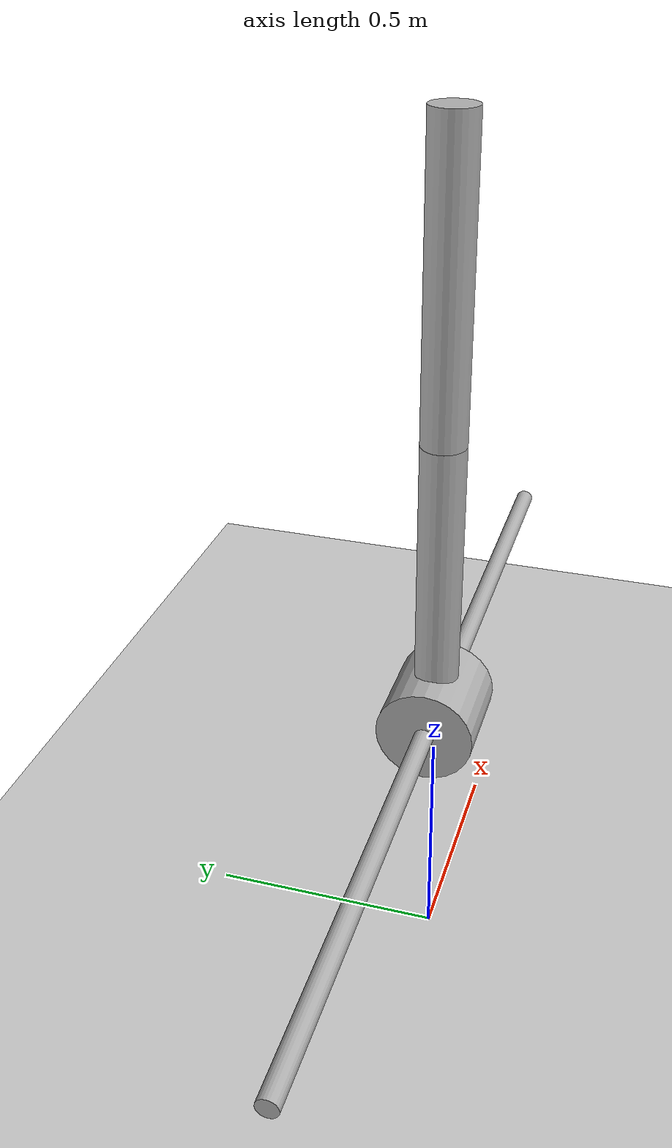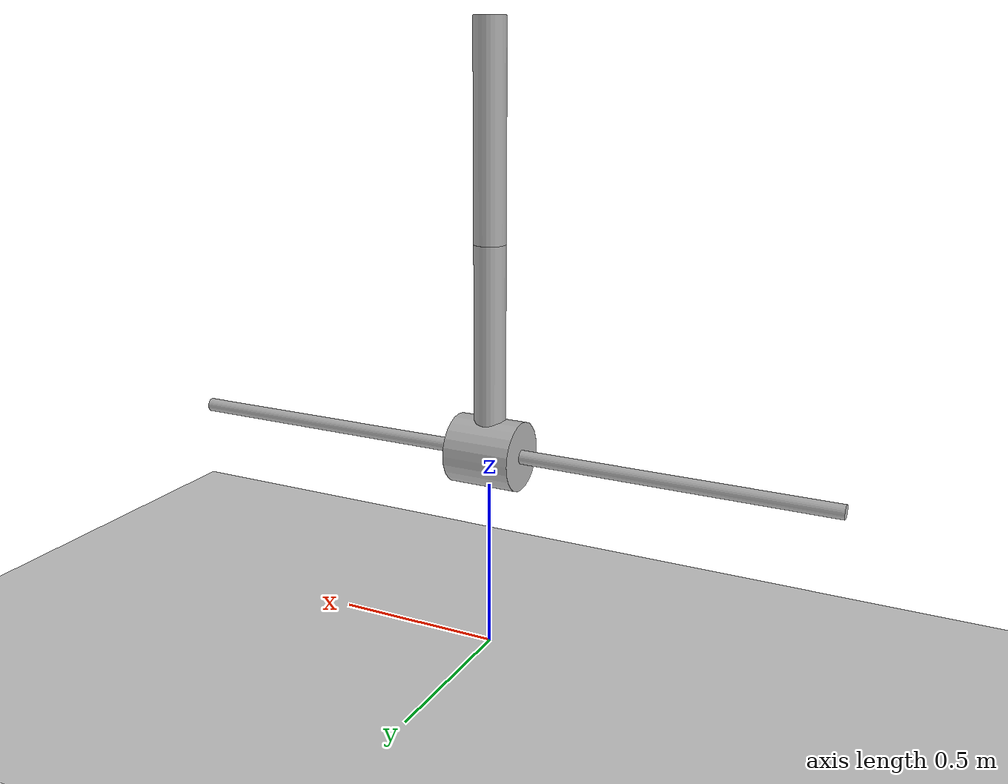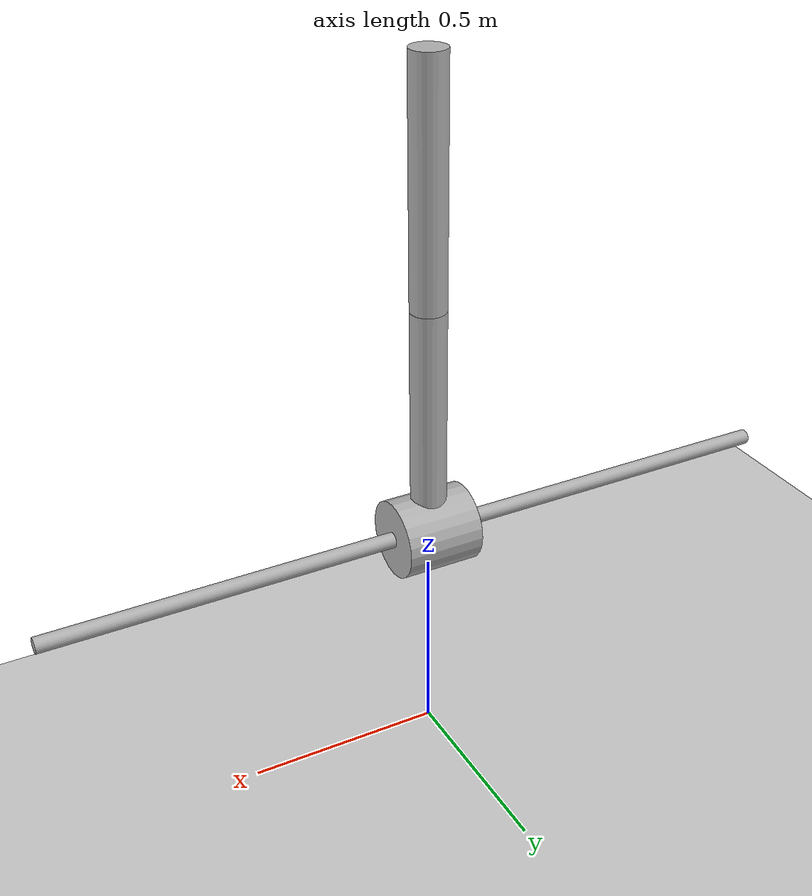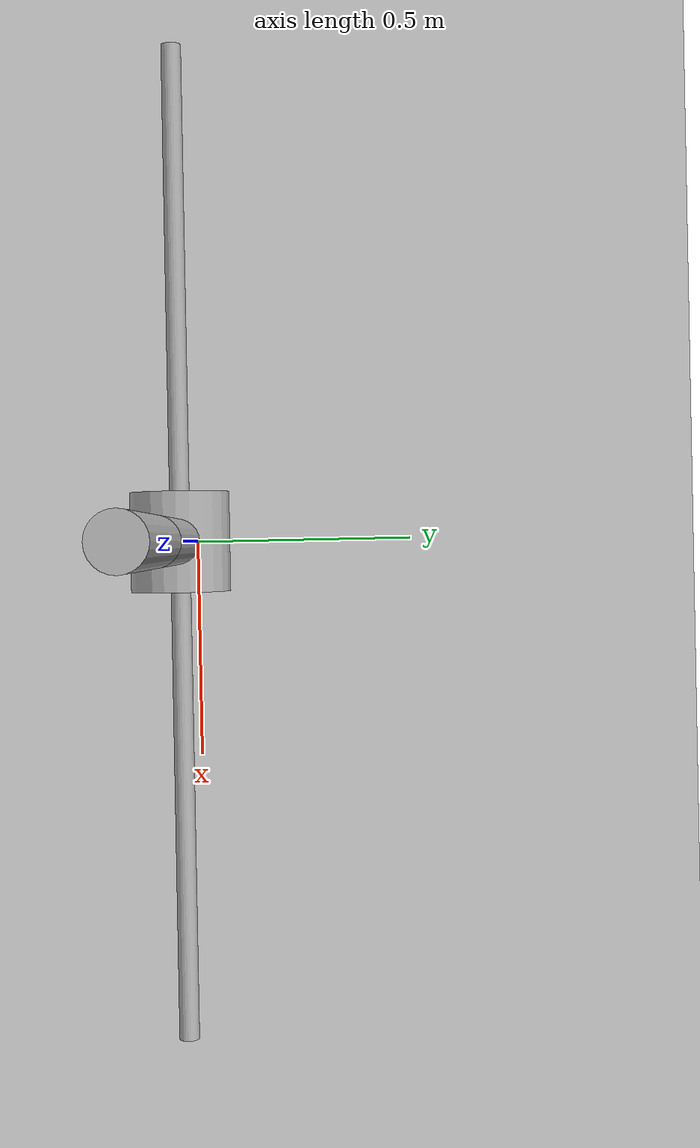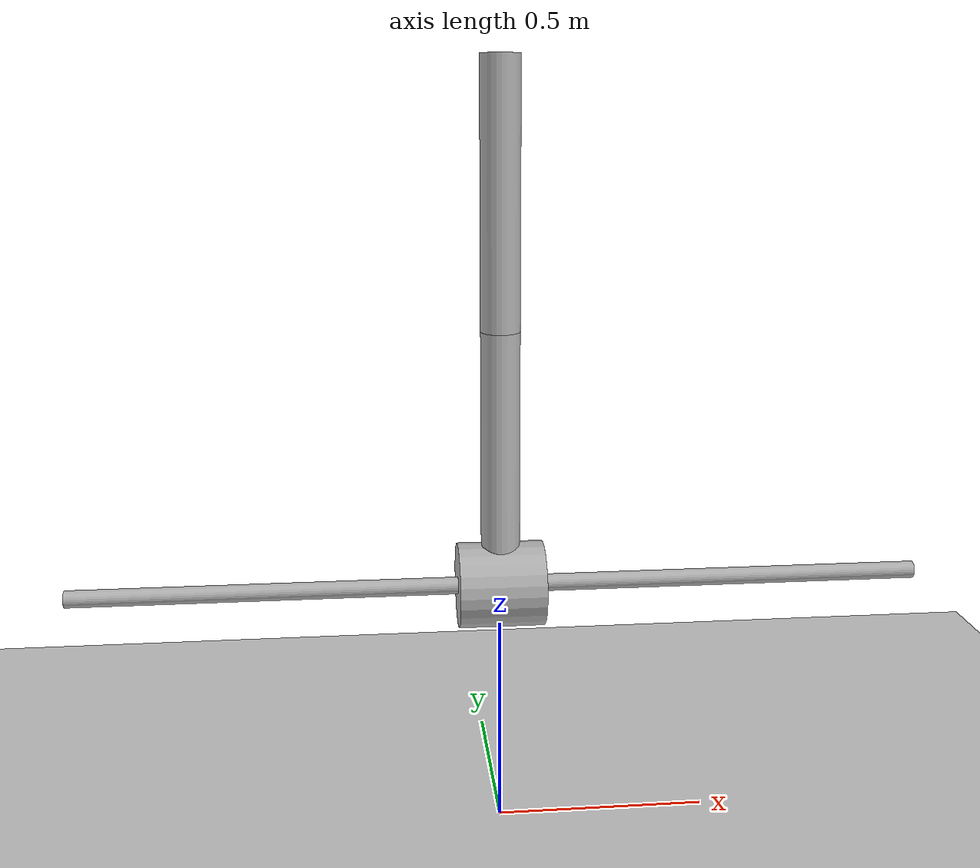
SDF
<?xml version="1.0" ?>
<sdf version="1.8">
  <world name="inverted_double_pendulum">
    <physics name="10ms" type="ignored">
      <max_step_size>0.01</max_step_size>
      <real_time_update_rate>0</real_time_update_rate>
    </physics>
    <plugin filename="gz-sim-physics-system"           name="gz::sim::systems::Physics"/>
    <plugin filename="gz-sim-contact-system"           name="gz::sim::systems::Contact"/>
    <plugin filename="gz-sim-sensors-system"           name="gz::sim::systems::Sensors">
      <render_engine>ogre2</render_engine>
    </plugin>
    <plugin filename="gz-sim-scene-broadcaster-system" name="gz::sim::systems::SceneBroadcaster"/>
    <plugin filename="gz-sim-user-commands-system"     name="gz::sim::systems::UserCommands"/>

    <plugin
      filename="gz-sim-python-system-loader-system"
      name="gz::sim::systems::PythonSystemLoader">
      <module_name>inverted_double_pendulum_learner</module_name>
      <agent_name>inverted_double_pendulum</agent_name>
      <frame_skip>5</frame_skip>
    </plugin>

    <light name="sun" type="directional">
      <cast_shadows>true</cast_shadows>
      <pose>0 0 10 0 0 0</pose>
      <diffuse>0.8 0.8 0.8 1</diffuse>
      <specular>0.2 0.2 0.2 1</specular>
      <direction>-0.5 0.1 -0.9</direction>
    </light>

    <model name="ground_plane">
      <static>true</static>
      <link name="link">
        <collision name="collision">
          <geometry><plane><normal>0 0 1</normal><size>100 100</size></plane></geometry>
        </collision>
        <visual name="visual">
          <geometry><plane><normal>0 0 1</normal><size>100 100</size></plane></geometry>
          <material>
            <ambient>0.8 0.8 0.8 1</ambient>
            <diffuse>0.8 0.8 0.8 1</diffuse>
            <specular>0.8 0.8 0.8 1</specular>
          </material>
        </visual>
      </link>
    </model>

    <model name="inverted_double_pendulum">
      <pose>0 0 0.6 0 0 0</pose>
      <include merge="true">
        <uri>package://gazebo_gymnasium_resources/models/inverted_double_pendulum</uri>
      </include>
    </model>
  </world>
</sdf>

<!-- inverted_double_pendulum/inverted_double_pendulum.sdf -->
<sdf version='1.11'>
  <model name='inverted_double_pendulum'>
    <link name='rail'>
      <inertial>
        <pose>0 0 0 0 0 0</pose>
        <mass>3.0000000000000001e-06</mass>
        <inertia>
          <ixx>3e-09</ixx>
          <ixy>0</ixy>
          <ixz>0</ixz>
          <iyy>3e-09</iyy>
          <iyz>0</iyz>
          <izz>3e-09</izz>
        </inertia>
      </inertial>
      <collision name='rail_fixed_joint_lump__rail_collision'>
        <pose>0 0 0 0 1.5707963267948966 0</pose>
        <geometry>
          <cylinder>
            <length>2</length>
            <radius>0.02</radius>
          </cylinder>
        </geometry>
      </collision>
      <visual name='rail_fixed_joint_lump__rail_visual'>
        <pose>0 0 0 0 1.5707963267948966 0</pose>
        <geometry>
          <cylinder>
            <length>2</length>
            <radius>0.02</radius>
          </cylinder>
        </geometry>
              <material>
          <ambient>0.5 0.5 0.5 1</ambient>
          <diffuse>0.7 0.7 0.7 1</diffuse>
          <specular>0.1 0.1 0.1 1</specular>
        </material>
      </visual>
    </link>
    <joint name='slider' type='prismatic'>
      <pose relative_to='rail'>0 0 0 0 0 0</pose>
      <parent>rail</parent>
      <child>cart</child>
      <axis>
        <xyz>1 0 0</xyz>
        <limit>
          <lower>-1</lower>
          <upper>1</upper>
          <effort>0</effort>
          <velocity>0</velocity>
        </limit>
        <dynamics>
          <damping>1</damping>
          <friction>0.0001</friction>
          <spring_reference>0</spring_reference>
          <spring_stiffness>0</spring_stiffness>
        </dynamics>
      </axis>
    </joint>
    <link name='cart'>
      <pose relative_to='slider'>0 0 0 0 0 0</pose>
      <inertial>
        <pose>0 0 0 0 0 0</pose>
        <mass>10.471981</mass>
        <inertia>
          <ixx>0.069810000999999997</ixx>
          <ixy>0</ixy>
          <ixz>0</ixz>
          <iyy>0.17453000099999999</iyy>
          <iyz>0</iyz>
          <izz>0.17453000099999999</izz>
        </inertia>
      </inertial>
      <collision name='cart_fixed_joint_lump__cart_collision'>
        <pose>0 0 0 0 1.5707963267948966 0</pose>
        <geometry>
          <cylinder>
            <length>0.20000000000000001</length>
            <radius>0.10000000000000001</radius>
          </cylinder>
        </geometry>
      </collision>
      <visual name='cart_fixed_joint_lump__cart_visual'>
        <pose>0 0 0 0 1.5707963267948966 0</pose>
        <geometry>
          <cylinder>
            <length>0.20000000000000001</length>
            <radius>0.10000000000000001</radius>
          </cylinder>
        </geometry>
              <material>
          <ambient>0.5 0.5 0.5 1</ambient>
          <diffuse>0.7 0.7 0.7 1</diffuse>
          <specular>0.1 0.1 0.1 1</specular>
        </material>
      </visual>
    </link>
    <joint name='hinge' type='revolute'>
      <pose relative_to='cart'>0 0 0 0 0 0</pose>
      <parent>cart</parent>
      <child>pole</child>
      <axis>
        <xyz>0 1 0</xyz>
        <limit>
          <lower>-inf</lower>
          <upper>inf</upper>
        </limit>
        <dynamics>
          <damping>1</damping>
          <friction>0.0001</friction>
          <spring_reference>0</spring_reference>
          <spring_stiffness>0</spring_stiffness>
        </dynamics>
      </axis>
    </joint>
    <link name='pole'>
      <pose relative_to='hinge'>0 0 0 0 0 0</pose>
      <inertial>
        <pose>0 0 0.29999992855001062 0 0 0</pose>
        <mass>4.1987410000000001</mass>
        <inertia>
          <ixx>0.1694200909999784</ixx>
          <ixy>0</ixy>
          <ixz>0</ixz>
          <iyy>0.1694200909999784</iyy>
          <iyz>0</iyz>
          <izz>0.005670001</izz>
        </inertia>
      </inertial>
      <collision name='pole_fixed_joint_lump__pole_collision'>
        <pose>0 0 0.29999999999999999 0 0 0</pose>
        <geometry>
          <cylinder>
            <length>0.59999999999999998</length>
            <radius>0.044999999999999998</radius>
          </cylinder>
        </geometry>
      </collision>
      <visual name='pole_fixed_joint_lump__pole_visual'>
        <pose>0 0 0.29999999999999999 0 0 0</pose>
        <geometry>
          <cylinder>
            <length>0.59999999999999998</length>
            <radius>0.044999999999999998</radius>
          </cylinder>
        </geometry>
              <material>
          <ambient>0.5 0.5 0.5 1</ambient>
          <diffuse>0.7 0.7 0.7 1</diffuse>
          <specular>0.1 0.1 0.1 1</specular>
        </material>
      </visual>
    </link>
    <joint name='hinge2' type='revolute'>
      <pose relative_to='pole'>0 0 0.59999999999999998 0 0 0</pose>
      <parent>pole</parent>
      <child>pole2</child>
      <axis>
        <xyz>0 1 0</xyz>
        <limit>
          <lower>-inf</lower>
          <upper>inf</upper>
        </limit>
        <dynamics>
          <damping>1</damping>
          <friction>0.0001</friction>
          <spring_reference>0</spring_reference>
          <spring_stiffness>0</spring_stiffness>
        </dynamics>
      </axis>
    </joint>
    <link name='pole2'>
      <pose relative_to='hinge2'>0 0 0 0 0 0</pose>
      <inertial>
        <pose>0 0 0.29999992855001062 0 0 0</pose>
        <mass>4.1987410000000001</mass>
        <inertia>
          <ixx>0.1694200909999784</ixx>
          <ixy>0</ixy>
          <ixz>0</ixz>
          <iyy>0.1694200909999784</iyy>
          <iyz>0</iyz>
          <izz>0.005670001</izz>
        </inertia>
      </inertial>
      <collision name='pole2_fixed_joint_lump__pole2_collision'>
        <pose>0 0 0.29999999999999999 0 0 0</pose>
        <geometry>
          <cylinder>
            <length>0.59999999999999998</length>
            <radius>0.044999999999999998</radius>
          </cylinder>
        </geometry>
      </collision>
      <visual name='pole2_fixed_joint_lump__pole2_visual'>
        <pose>0 0 0.29999999999999999 0 0 0</pose>
        <geometry>
          <cylinder>
            <length>0.59999999999999998</length>
            <radius>0.044999999999999998</radius>
          </cylinder>
        </geometry>
              <material>
          <ambient>0.5 0.5 0.5 1</ambient>
          <diffuse>0.7 0.7 0.7 1</diffuse>
          <specular>0.1 0.1 0.1 1</specular>
        </material>
      </visual>
    </link>

<!-- Apply scalar force on the slider; gear=500 in the MJCF, applied
         in the env's apply_action before publishing. -->
    <plugin
      filename="gz-sim-apply-joint-force-system"
      name="gz::sim::systems::ApplyJointForce">
      <joint_name>slider</joint_name>
    </plugin>

    <plugin
      filename="gz-sim-joint-state-publisher-system"
      name="gz::sim::systems::JointStatePublisher">
      <joint_name>slider</joint_name>
      <joint_name>hinge</joint_name>
      <joint_name>hinge2</joint_name>
    </plugin>
  </model>
</sdf>
